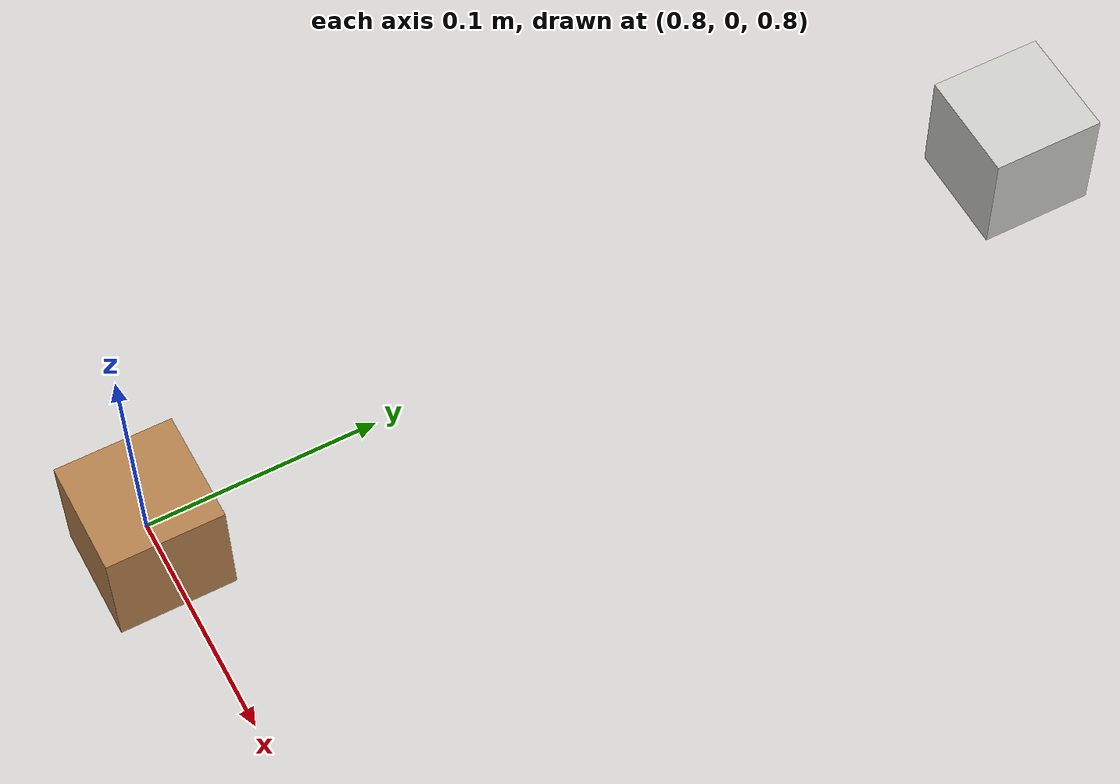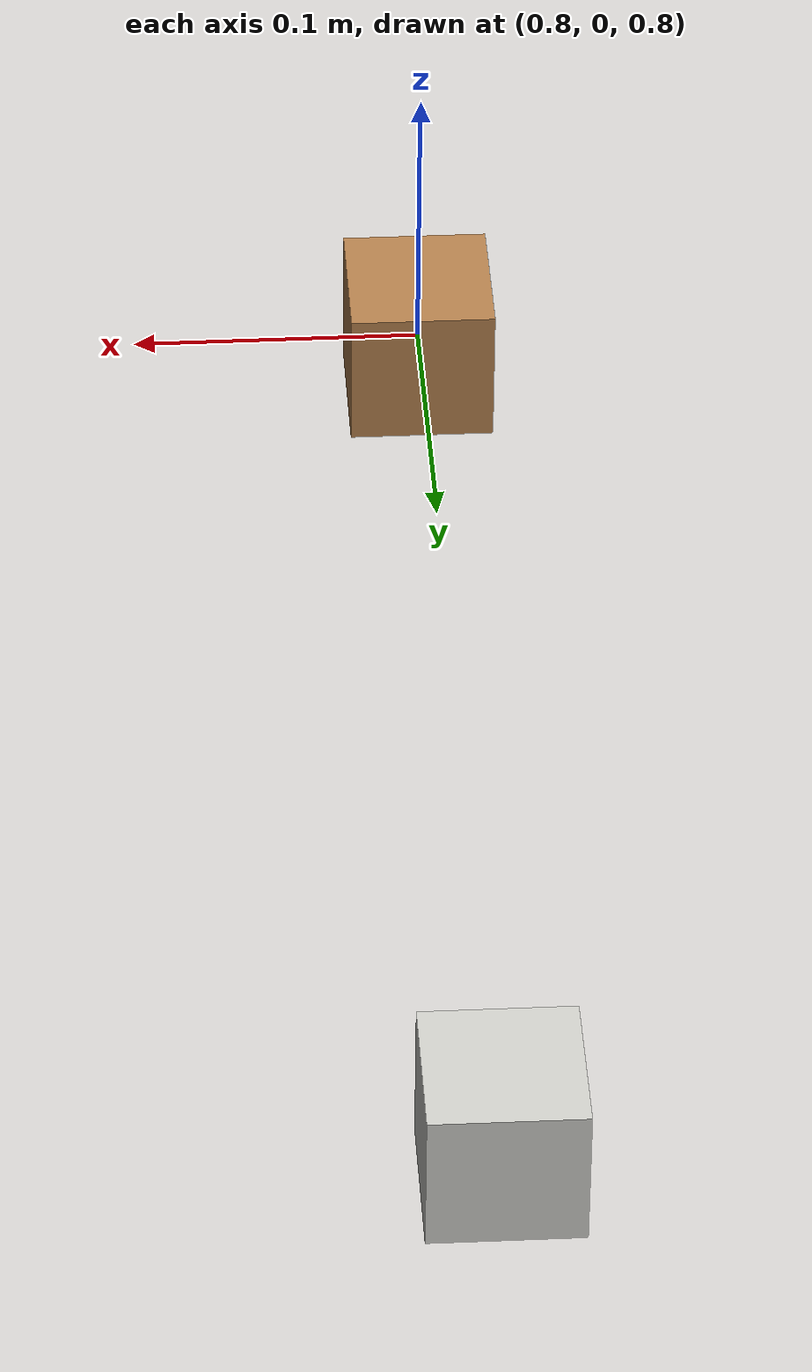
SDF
<?xml version="1.0" ?>

<sdf version="1.6">

  <world name="ur5_cubes">

    <gui>
      <camera name="user_camera">
        <pose>1.4 -2.3 1.4 0.0 0.25 1.9</pose>
      </camera>
    </gui>

    <gravity>0 0 -9.81</gravity>

    <physics name="default_physics" default="0" type="ode">
      <max_step_size>0.001</max_step_size>
      <real_time_factor>1</real_time_factor>
      <real_time_update_rate>1000</real_time_update_rate>
    </physics>

    <scene>
      <ambient>0.4 0.4 0.4 1</ambient>
      <background>0.7 0.7 0.7 1</background>
      <shadows>1</shadows>
    </scene>

    <!-- Light Source -->
    <include>
      <uri>model://sun</uri>
    </include>

    <!-- A ground plane -->
    <include>
      <uri>model://ground_plane</uri>
      <pose>0 0 0 0 0 0</pose>
    </include>

    <!-- A gazebo links attacher -->

    <!-- Cubes -->
    <model name="cube1">
      <pose>0.80 0 0.775 0 0 0</pose>
      <link name="link">
        <pose>0 0 0.025 0 0 0</pose>
        <inertial>
          <mass>0.0565</mass>
          <inertia>
            <ixx>2.3541666666666672e-05</ixx>
            <ixy>0</ixy>
            <ixz>0</ixz>
            <iyy>2.3541666666666672e-05</iyy>
            <iyz>0</iyz>
            <izz>2.3541666666666672e-05</izz>
          </inertia>
        </inertial>
        <collision name="collision">
          <geometry>
            <box>
              <size>0.05 0.05 0.05</size>
            </box>
          </geometry>
          <surface>
            <contact>
              <poissons_ratio>0.347</poissons_ratio>
              <elastic_modulus>8.8e+09</elastic_modulus>
              <ode>
                <kp>100000</kp>
                <kd>1</kd>
                <max_vel>1.0</max_vel>
                <min_depth>0.001</min_depth>
              </ode>
            </contact>
            <friction>
              <torsional>
                <coefficient>1.0</coefficient>
                <use_patch_radius>0</use_patch_radius>
                <surface_radius>0.05</surface_radius>
              </torsional>
            </friction>
          </surface>
        </collision>
        <visual name="visual">
          <geometry>
            <box>
              <size>0.05 0.05 0.05</size>
            </box>
          </geometry>
          <material>
            <script>
              <uri>file://media/materials/scripts/gazebo.material</uri>
              <name>Gazebo/Wood</name>
            </script>
          </material>
        </visual>
      </link>
    </model>

    <model name="cube2">
      <pose>0.80 0.4 0.775 0 0 0</pose>
      <link name="link">
        <pose>0 0 0.025 0 0 0</pose>
        <inertial>
          <mass>0.0565</mass>
          <inertia>
            <ixx>2.3541666666666672e-05</ixx>
            <ixy>0</ixy>
            <ixz>0</ixz>
            <iyy>2.3541666666666672e-05</iyy>
            <iyz>0</iyz>
            <izz>2.3541666666666672e-05</izz>
          </inertia>
        </inertial>
        <collision name="collision">
          <geometry>
            <box>
              <size>0.05 0.05 0.05</size>
            </box>
          </geometry>
          <surface>
            <contact>
              <poissons_ratio>0.347</poissons_ratio>
              <elastic_modulus>8.8e+09</elastic_modulus>
              <ode>
                <kp>100000</kp>
                <kd>1</kd>
                <max_vel>1.0</max_vel>
                <min_depth>0.001</min_depth>
              </ode>
            </contact>
            <friction>
              <torsional>
                <coefficient>1.0</coefficient>
                <use_patch_radius>0</use_patch_radius>
                <surface_radius>0.05</surface_radius>
              </torsional>
            </friction>
          </surface>
        </collision>
        <visual name="visual">
          <geometry>
            <box>
              <size>0.05 0.05 0.05</size>
            </box>
          </geometry>
          <material>
            <script>
              <uri>file://media/materials/scripts/gazebo.material</uri>
              <name>Gazebo/CeilingTiled</name>
            </script>
          </material>
        </visual>
      </link>
    </model>
  </world>
</sdf>
